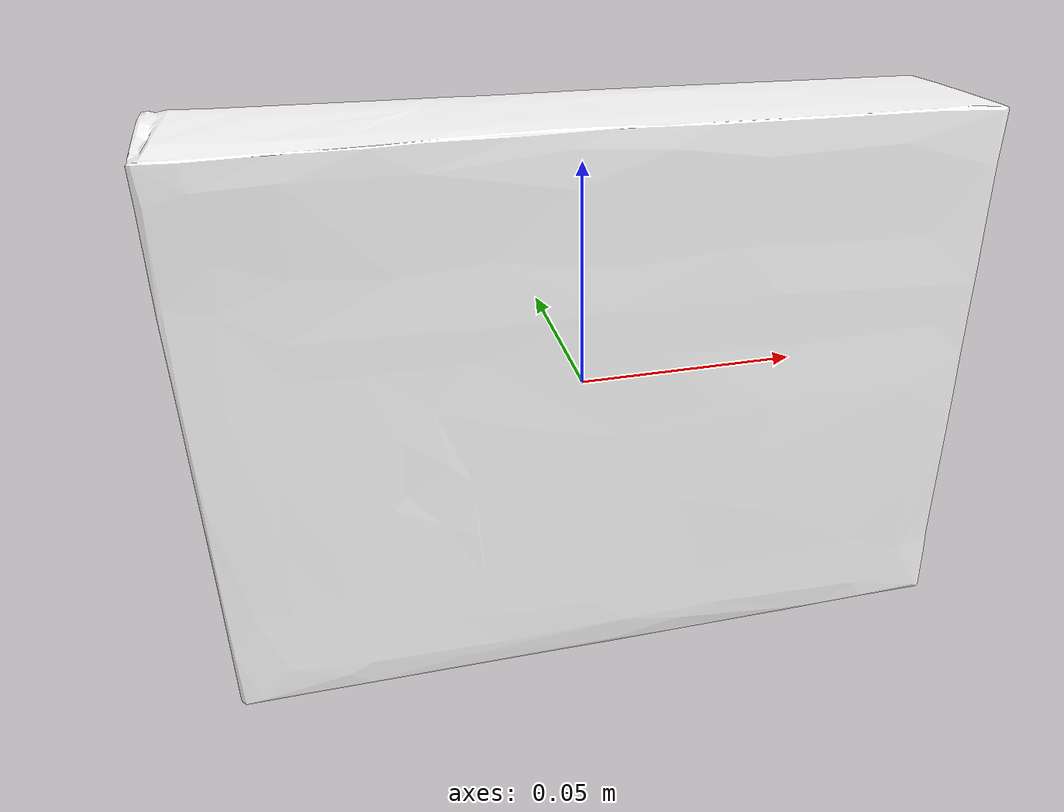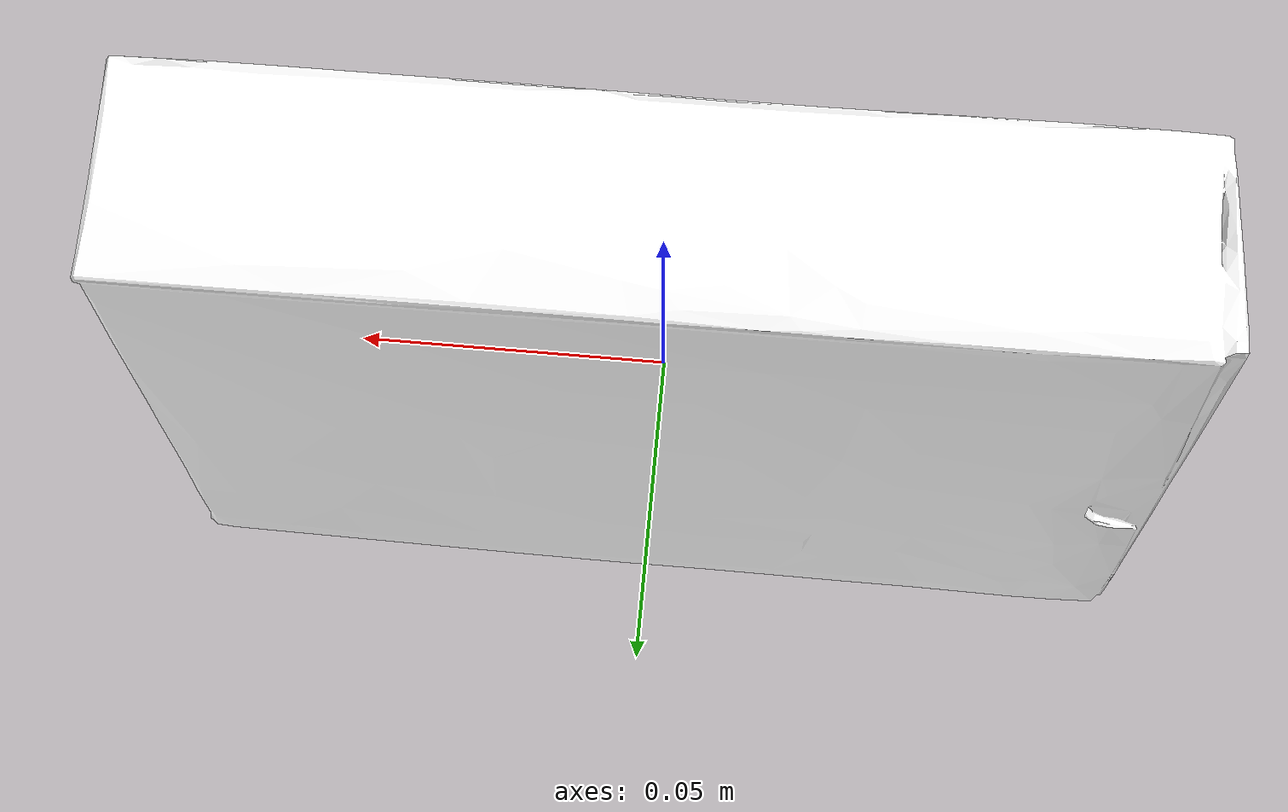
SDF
<?xml version='1.0'?>
<sdf version='1.7'>
  <model name='Cookies'>
    <link name='link_0'>
      <inertial>
        <mass>1</mass>
        <inertia>
          <ixx>0.0024652</ixx>
          <ixy>0</ixy>
          <ixz>0</ixz>
          <iyy>0.0035864</iyy>
          <iyz>0</iyz>
          <izz>0.0013899</izz>
        </inertia>
        <pose>0 0 0 0 1.57 0</pose>
      </inertial>
      <self_collide>0</self_collide>
      <enable_wind>0</enable_wind>
      <kinematic>0</kinematic>
      <pose>0 0 0 0 -0 0</pose>
      <gravity>1</gravity>
      <visual name='visual'>
        <geometry>
          <mesh>
            <uri>model://Cookies/meshes/model.dae</uri>
            <scale>0.01 0.01 0.01</scale>
          </mesh>
        </geometry>
        <material>
          <script>
            <uri>model://Cookies/materials/scripts/</uri>
            <uri>model://Cookies/materials/textures/</uri>
            <name>Cookies/Diffuse</name>
          </script>
          <shader type='pixel'>
            <normal_map>__default__</normal_map>
          </shader>
          <ambient>1 1 1 1</ambient>
          <diffuse>1 1 1 1</diffuse>
          <specular>0 0 0 1</specular>
          <emissive>0 0 0 1</emissive>
        </material>
        <pose>0 0 0 0 -1.57 0</pose>
        <transparency>0</transparency>
        <cast_shadows>1</cast_shadows>
      </visual>
      <collision name='collision_0'>
        <laser_retro>0</laser_retro>
        <max_contacts>10</max_contacts>
        <pose>0 0 0 0 -1.57 0</pose>
        <geometry>
          <mesh>
            <uri>/home/alessio/model_editor_models/Cookies/meshes/model.dae</uri>
            <scale>0.01 0.01 0.01</scale>
          </mesh>
        </geometry>
        <surface>
          <friction>
            <ode>
              <mu>10</mu>
              <mu2>10</mu2>
              <fdir1>0 0 0</fdir1>
              <slip1>0</slip1>
              <slip2>0</slip2>
            </ode>
            <torsional>
              <coefficient>2</coefficient>
              <patch_radius>0.75</patch_radius>
              <surface_radius>0.75</surface_radius>
              <use_patch_radius>0</use_patch_radius>
              <ode>
                <slip>0</slip>
              </ode>
            </torsional>
          </friction>
          <bounce>
            <restitution_coefficient>0.002</restitution_coefficient>
            <threshold>1e+06</threshold>
          </bounce>
          <contact>
            <collide_without_contact>0</collide_without_contact>
            <collide_without_contact_bitmask>1</collide_without_contact_bitmask>
            <collide_bitmask>1</collide_bitmask>
            <ode>
              <soft_cfm>0</soft_cfm>
              <soft_erp>0.2</soft_erp>
              <kp>1e+07</kp>
              <kd>100000</kd>
              <max_vel>0.01</max_vel>
              <min_depth>0</min_depth>
            </ode>
            <bullet>
              <split_impulse>1</split_impulse>
              <split_impulse_penetration_threshold>-0.01</split_impulse_penetration_threshold>
              <soft_cfm>0</soft_cfm>
              <soft_erp>0.2</soft_erp>
              <kp>1e+07</kp>
              <kd>100000</kd>
            </bullet>
          </contact>
        </surface>
      </collision>
    </link>
    <static>0</static>
    <allow_auto_disable>1</allow_auto_disable>
  </model>
</sdf>
